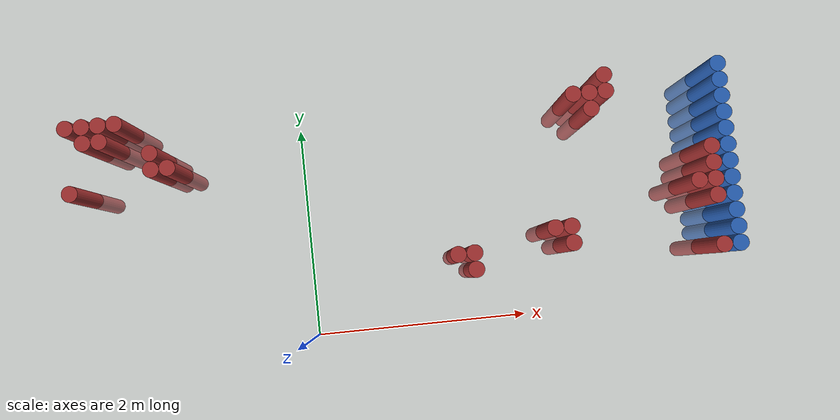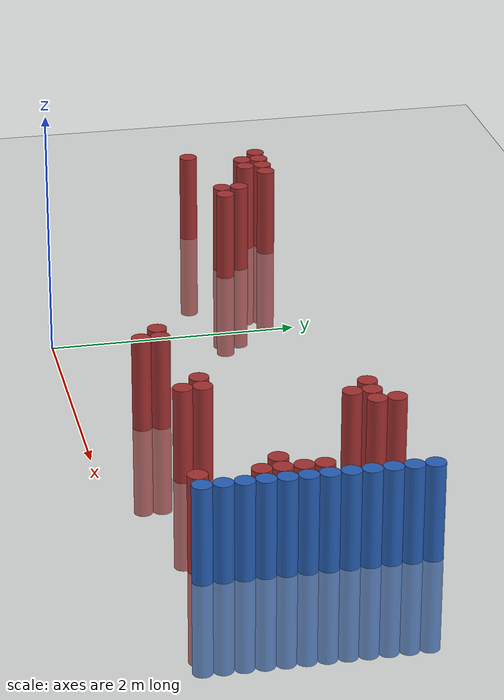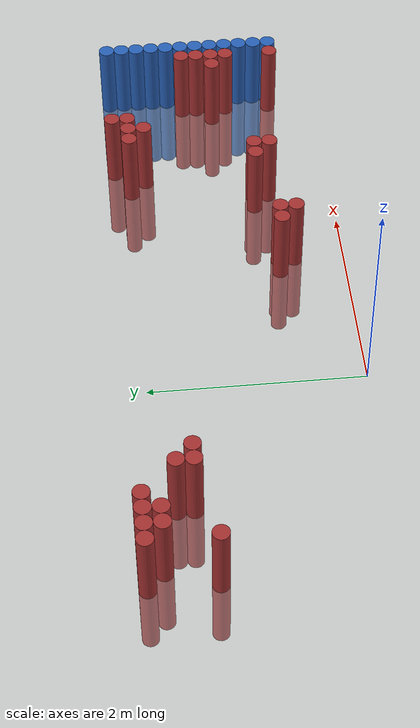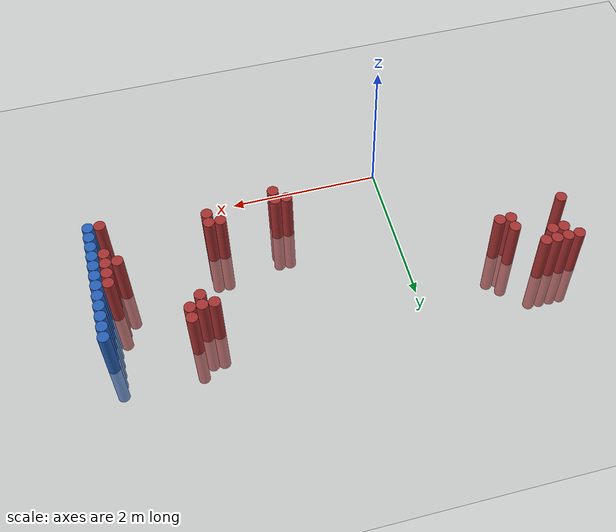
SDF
<sdf version="1.6">
 <world name="default">
  <model name="ground_plane">
   <static>1</static>
   <link name="link">
    <collision name="collision">
     <geometry><plane><normal>0 0 1</normal><size>100 100</size></plane></geometry>
     <surface><friction><ode><mu>100</mu><mu2>50</mu2></ode></friction></surface>
    </collision>
    <visual name="visual">
     <cast_shadows>0</cast_shadows>
     <geometry><plane><normal>0 0 1</normal><size>100 100</size></plane></geometry>
     <material>
      <script><uri>file://media/materials/scripts/gazebo.material</uri><name>Gazebo/Grey</name></script>
     </material>
    </visual>
   </link>
  </model>
  <model name="unit_cylinder_122">
   <static>1</static>
   <pose>3.925000 0.625000 0.000000 0.000000 0.000000 0.000000</pose>
   <link name="link">
    <inertial>
     <mass>1</mass>
     <inertia><ixx>0.145833</ixx><ixy>0</ixy><ixz>0</ixz><iyy>0.145833</iyy><iyz>0</iyz><izz>0.125</izz></inertia>
    </inertial>
    <collision name="collision">
     <geometry><cylinder><radius>0.075000</radius><length>1.5</length></cylinder></geometry>
    </collision>
    <visual name="visual">
     <geometry><cylinder><radius>0.075000</radius><length>1.5</length></cylinder></geometry>
     <material>
      <ambient>0.152000 0.379000 0.720000 1</ambient>
      <diffuse>0.152000 0.379000 0.720000 1</diffuse>
     </material>
     <material>
      <script><name>Gazebo/Grey</name><uri>file://media/materials/scripts/gazebo.material</uri></script>
     </material>
    </visual>
   </link>
  </model>
  <model name="unit_cylinder_124">
   <static>1</static>
   <pose>3.925000 0.775000 0.000000 0.000000 0.000000 0.000000</pose>
   <link name="link">
    <inertial>
     <mass>1</mass>
     <inertia><ixx>0.145833</ixx><ixy>0</ixy><ixz>0</ixz><iyy>0.145833</iyy><iyz>0</iyz><izz>0.125</izz></inertia>
    </inertial>
    <collision name="collision">
     <geometry><cylinder><radius>0.075000</radius><length>1.5</length></cylinder></geometry>
    </collision>
    <visual name="visual">
     <geometry><cylinder><radius>0.075000</radius><length>1.5</length></cylinder></geometry>
     <material>
      <ambient>0.152000 0.379000 0.720000 1</ambient>
      <diffuse>0.152000 0.379000 0.720000 1</diffuse>
     </material>
     <material>
      <script><name>Gazebo/Grey</name><uri>file://media/materials/scripts/gazebo.material</uri></script>
     </material>
    </visual>
   </link>
  </model>
  <model name="unit_cylinder_126">
   <static>1</static>
   <pose>3.925000 0.925000 0.000000 0.000000 0.000000 0.000000</pose>
   <link name="link">
    <inertial>
     <mass>1</mass>
     <inertia><ixx>0.145833</ixx><ixy>0</ixy><ixz>0</ixz><iyy>0.145833</iyy><iyz>0</iyz><izz>0.125</izz></inertia>
    </inertial>
    <collision name="collision">
     <geometry><cylinder><radius>0.075000</radius><length>1.5</length></cylinder></geometry>
    </collision>
    <visual name="visual">
     <geometry><cylinder><radius>0.075000</radius><length>1.5</length></cylinder></geometry>
     <material>
      <ambient>0.152000 0.379000 0.720000 1</ambient>
      <diffuse>0.152000 0.379000 0.720000 1</diffuse>
     </material>
     <material>
      <script><name>Gazebo/Grey</name><uri>file://media/materials/scripts/gazebo.material</uri></script>
     </material>
    </visual>
   </link>
  </model>
  <model name="unit_cylinder_128">
   <static>1</static>
   <pose>3.925000 1.075000 0.000000 0.000000 0.000000 0.000000</pose>
   <link name="link">
    <inertial>
     <mass>1</mass>
     <inertia><ixx>0.145833</ixx><ixy>0</ixy><ixz>0</ixz><iyy>0.145833</iyy><iyz>0</iyz><izz>0.125</izz></inertia>
    </inertial>
    <collision name="collision">
     <geometry><cylinder><radius>0.075000</radius><length>1.5</length></cylinder></geometry>
    </collision>
    <visual name="visual">
     <geometry><cylinder><radius>0.075000</radius><length>1.5</length></cylinder></geometry>
     <material>
      <ambient>0.152000 0.379000 0.720000 1</ambient>
      <diffuse>0.152000 0.379000 0.720000 1</diffuse>
     </material>
     <material>
      <script><name>Gazebo/Grey</name><uri>file://media/materials/scripts/gazebo.material</uri></script>
     </material>
    </visual>
   </link>
  </model>
  <model name="unit_cylinder_130">
   <static>1</static>
   <pose>3.925000 1.225000 0.000000 0.000000 0.000000 0.000000</pose>
   <link name="link">
    <inertial>
     <mass>1</mass>
     <inertia><ixx>0.145833</ixx><ixy>0</ixy><ixz>0</ixz><iyy>0.145833</iyy><iyz>0</iyz><izz>0.125</izz></inertia>
    </inertial>
    <collision name="collision">
     <geometry><cylinder><radius>0.075000</radius><length>1.5</length></cylinder></geometry>
    </collision>
    <visual name="visual">
     <geometry><cylinder><radius>0.075000</radius><length>1.5</length></cylinder></geometry>
     <material>
      <ambient>0.152000 0.379000 0.720000 1</ambient>
      <diffuse>0.152000 0.379000 0.720000 1</diffuse>
     </material>
     <material>
      <script><name>Gazebo/Grey</name><uri>file://media/materials/scripts/gazebo.material</uri></script>
     </material>
    </visual>
   </link>
  </model>
  <model name="unit_cylinder_132">
   <static>1</static>
   <pose>3.925000 1.375000 0.000000 0.000000 0.000000 0.000000</pose>
   <link name="link">
    <inertial>
     <mass>1</mass>
     <inertia><ixx>0.145833</ixx><ixy>0</ixy><ixz>0</ixz><iyy>0.145833</iyy><iyz>0</iyz><izz>0.125</izz></inertia>
    </inertial>
    <collision name="collision">
     <geometry><cylinder><radius>0.075000</radius><length>1.5</length></cylinder></geometry>
    </collision>
    <visual name="visual">
     <geometry><cylinder><radius>0.075000</radius><length>1.5</length></cylinder></geometry>
     <material>
      <ambient>0.152000 0.379000 0.720000 1</ambient>
      <diffuse>0.152000 0.379000 0.720000 1</diffuse>
     </material>
     <material>
      <script><name>Gazebo/Grey</name><uri>file://media/materials/scripts/gazebo.material</uri></script>
     </material>
    </visual>
   </link>
  </model>
  <model name="unit_cylinder_134">
   <static>1</static>
   <pose>3.925000 1.525000 0.000000 0.000000 0.000000 0.000000</pose>
   <link name="link">
    <inertial>
     <mass>1</mass>
     <inertia><ixx>0.145833</ixx><ixy>0</ixy><ixz>0</ixz><iyy>0.145833</iyy><iyz>0</iyz><izz>0.125</izz></inertia>
    </inertial>
    <collision name="collision">
     <geometry><cylinder><radius>0.075000</radius><length>1.5</length></cylinder></geometry>
    </collision>
    <visual name="visual">
     <geometry><cylinder><radius>0.075000</radius><length>1.5</length></cylinder></geometry>
     <material>
      <ambient>0.152000 0.379000 0.720000 1</ambient>
      <diffuse>0.152000 0.379000 0.720000 1</diffuse>
     </material>
     <material>
      <script><name>Gazebo/Grey</name><uri>file://media/materials/scripts/gazebo.material</uri></script>
     </material>
    </visual>
   </link>
  </model>
  <model name="unit_cylinder_136">
   <static>1</static>
   <pose>3.925000 1.675000 0.000000 0.000000 0.000000 0.000000</pose>
   <link name="link">
    <inertial>
     <mass>1</mass>
     <inertia><ixx>0.145833</ixx><ixy>0</ixy><ixz>0</ixz><iyy>0.145833</iyy><iyz>0</iyz><izz>0.125</izz></inertia>
    </inertial>
    <collision name="collision">
     <geometry><cylinder><radius>0.075000</radius><length>1.5</length></cylinder></geometry>
    </collision>
    <visual name="visual">
     <geometry><cylinder><radius>0.075000</radius><length>1.5</length></cylinder></geometry>
     <material>
      <ambient>0.152000 0.379000 0.720000 1</ambient>
      <diffuse>0.152000 0.379000 0.720000 1</diffuse>
     </material>
     <material>
      <script><name>Gazebo/Grey</name><uri>file://media/materials/scripts/gazebo.material</uri></script>
     </material>
    </visual>
   </link>
  </model>
  <model name="unit_cylinder_138">
   <static>1</static>
   <pose>3.925000 1.825000 0.000000 0.000000 0.000000 0.000000</pose>
   <link name="link">
    <inertial>
     <mass>1</mass>
     <inertia><ixx>0.145833</ixx><ixy>0</ixy><ixz>0</ixz><iyy>0.145833</iyy><iyz>0</iyz><izz>0.125</izz></inertia>
    </inertial>
    <collision name="collision">
     <geometry><cylinder><radius>0.075000</radius><length>1.5</length></cylinder></geometry>
    </collision>
    <visual name="visual">
     <geometry><cylinder><radius>0.075000</radius><length>1.5</length></cylinder></geometry>
     <material>
      <ambient>0.152000 0.379000 0.720000 1</ambient>
      <diffuse>0.152000 0.379000 0.720000 1</diffuse>
     </material>
     <material>
      <script><name>Gazebo/Grey</name><uri>file://media/materials/scripts/gazebo.material</uri></script>
     </material>
    </visual>
   </link>
  </model>
  <model name="unit_cylinder_140">
   <static>1</static>
   <pose>3.925000 1.975000 0.000000 0.000000 0.000000 0.000000</pose>
   <link name="link">
    <inertial>
     <mass>1</mass>
     <inertia><ixx>0.145833</ixx><ixy>0</ixy><ixz>0</ixz><iyy>0.145833</iyy><iyz>0</iyz><izz>0.125</izz></inertia>
    </inertial>
    <collision name="collision">
     <geometry><cylinder><radius>0.075000</radius><length>1.5</length></cylinder></geometry>
    </collision>
    <visual name="visual">
     <geometry><cylinder><radius>0.075000</radius><length>1.5</length></cylinder></geometry>
     <material>
      <ambient>0.152000 0.379000 0.720000 1</ambient>
      <diffuse>0.152000 0.379000 0.720000 1</diffuse>
     </material>
     <material>
      <script><name>Gazebo/Grey</name><uri>file://media/materials/scripts/gazebo.material</uri></script>
     </material>
    </visual>
   </link>
  </model>
  <model name="unit_cylinder_142">
   <static>1</static>
   <pose>3.925000 2.125000 0.000000 0.000000 0.000000 0.000000</pose>
   <link name="link">
    <inertial>
     <mass>1</mass>
     <inertia><ixx>0.145833</ixx><ixy>0</ixy><ixz>0</ixz><iyy>0.145833</iyy><iyz>0</iyz><izz>0.125</izz></inertia>
    </inertial>
    <collision name="collision">
     <geometry><cylinder><radius>0.075000</radius><length>1.5</length></cylinder></geometry>
    </collision>
    <visual name="visual">
     <geometry><cylinder><radius>0.075000</radius><length>1.5</length></cylinder></geometry>
     <material>
      <ambient>0.152000 0.379000 0.720000 1</ambient>
      <diffuse>0.152000 0.379000 0.720000 1</diffuse>
     </material>
     <material>
      <script><name>Gazebo/Grey</name><uri>file://media/materials/scripts/gazebo.material</uri></script>
     </material>
    </visual>
   </link>
  </model>
  <model name="unit_cylinder_293">
   <static>1</static>
   <pose>-2.075000 1.525000 0.000000 0.000000 0.000000 0.000000</pose>
   <link name="link">
    <inertial>
     <mass>1</mass>
     <inertia><ixx>0.145833</ixx><ixy>0</ixy><ixz>0</ixz><iyy>0.145833</iyy><iyz>0</iyz><izz>0.125</izz></inertia>
    </inertial>
    <collision name="collision">
     <geometry><cylinder><radius>0.075000</radius><length>1.5</length></cylinder></geometry>
    </collision>
    <visual name="visual">
     <geometry><cylinder><radius>0.075000</radius><length>1.5</length></cylinder></geometry>
     <material>
      <ambient>0.648000 0.192000 0.192000 1</ambient>
      <diffuse>0.648000 0.192000 0.192000 1</diffuse>
     </material>
     <material>
      <script><name>Gazebo/Grey</name><uri>file://media/materials/scripts/gazebo.material</uri></script>
     </material>
    </visual>
   </link>
  </model>
  <model name="unit_cylinder_294">
   <static>1</static>
   <pose>-2.075000 2.125000 0.000000 0.000000 0.000000 0.000000</pose>
   <link name="link">
    <inertial>
     <mass>1</mass>
     <inertia><ixx>0.145833</ixx><ixy>0</ixy><ixz>0</ixz><iyy>0.145833</iyy><iyz>0</iyz><izz>0.125</izz></inertia>
    </inertial>
    <collision name="collision">
     <geometry><cylinder><radius>0.075000</radius><length>1.5</length></cylinder></geometry>
    </collision>
    <visual name="visual">
     <geometry><cylinder><radius>0.075000</radius><length>1.5</length></cylinder></geometry>
     <material>
      <ambient>0.648000 0.192000 0.192000 1</ambient>
      <diffuse>0.648000 0.192000 0.192000 1</diffuse>
     </material>
     <material>
      <script><name>Gazebo/Grey</name><uri>file://media/materials/scripts/gazebo.material</uri></script>
     </material>
    </visual>
   </link>
  </model>
  <model name="unit_cylinder_296">
   <static>1</static>
   <pose>-1.925000 1.975000 0.000000 0.000000 0.000000 0.000000</pose>
   <link name="link">
    <inertial>
     <mass>1</mass>
     <inertia><ixx>0.145833</ixx><ixy>0</ixy><ixz>0</ixz><iyy>0.145833</iyy><iyz>0</iyz><izz>0.125</izz></inertia>
    </inertial>
    <collision name="collision">
     <geometry><cylinder><radius>0.075000</radius><length>1.5</length></cylinder></geometry>
    </collision>
    <visual name="visual">
     <geometry><cylinder><radius>0.075000</radius><length>1.5</length></cylinder></geometry>
     <material>
      <ambient>0.648000 0.192000 0.192000 1</ambient>
      <diffuse>0.648000 0.192000 0.192000 1</diffuse>
     </material>
     <material>
      <script><name>Gazebo/Grey</name><uri>file://media/materials/scripts/gazebo.material</uri></script>
     </material>
    </visual>
   </link>
  </model>
  <model name="unit_cylinder_297">
   <static>1</static>
   <pose>-1.925000 2.125000 0.000000 0.000000 0.000000 0.000000</pose>
   <link name="link">
    <inertial>
     <mass>1</mass>
     <inertia><ixx>0.145833</ixx><ixy>0</ixy><ixz>0</ixz><iyy>0.145833</iyy><iyz>0</iyz><izz>0.125</izz></inertia>
    </inertial>
    <collision name="collision">
     <geometry><cylinder><radius>0.075000</radius><length>1.5</length></cylinder></geometry>
    </collision>
    <visual name="visual">
     <geometry><cylinder><radius>0.075000</radius><length>1.5</length></cylinder></geometry>
     <material>
      <ambient>0.648000 0.192000 0.192000 1</ambient>
      <diffuse>0.648000 0.192000 0.192000 1</diffuse>
     </material>
     <material>
      <script><name>Gazebo/Grey</name><uri>file://media/materials/scripts/gazebo.material</uri></script>
     </material>
    </visual>
   </link>
  </model>
  <model name="unit_cylinder_301">
   <static>1</static>
   <pose>-1.775000 1.975000 0.000000 0.000000 0.000000 0.000000</pose>
   <link name="link">
    <inertial>
     <mass>1</mass>
     <inertia><ixx>0.145833</ixx><ixy>0</ixy><ixz>0</ixz><iyy>0.145833</iyy><iyz>0</iyz><izz>0.125</izz></inertia>
    </inertial>
    <collision name="collision">
     <geometry><cylinder><radius>0.075000</radius><length>1.5</length></cylinder></geometry>
    </collision>
    <visual name="visual">
     <geometry><cylinder><radius>0.075000</radius><length>1.5</length></cylinder></geometry>
     <material>
      <ambient>0.648000 0.192000 0.192000 1</ambient>
      <diffuse>0.648000 0.192000 0.192000 1</diffuse>
     </material>
     <material>
      <script><name>Gazebo/Grey</name><uri>file://media/materials/scripts/gazebo.material</uri></script>
     </material>
    </visual>
   </link>
  </model>
  <model name="unit_cylinder_302">
   <static>1</static>
   <pose>-1.775000 2.125000 0.000000 0.000000 0.000000 0.000000</pose>
   <link name="link">
    <inertial>
     <mass>1</mass>
     <inertia><ixx>0.145833</ixx><ixy>0</ixy><ixz>0</ixz><iyy>0.145833</iyy><iyz>0</iyz><izz>0.125</izz></inertia>
    </inertial>
    <collision name="collision">
     <geometry><cylinder><radius>0.075000</radius><length>1.5</length></cylinder></geometry>
    </collision>
    <visual name="visual">
     <geometry><cylinder><radius>0.075000</radius><length>1.5</length></cylinder></geometry>
     <material>
      <ambient>0.648000 0.192000 0.192000 1</ambient>
      <diffuse>0.648000 0.192000 0.192000 1</diffuse>
     </material>
     <material>
      <script><name>Gazebo/Grey</name><uri>file://media/materials/scripts/gazebo.material</uri></script>
     </material>
    </visual>
   </link>
  </model>
  <model name="unit_cylinder_306">
   <static>1</static>
   <pose>-1.625000 2.125000 0.000000 0.000000 0.000000 0.000000</pose>
   <link name="link">
    <inertial>
     <mass>1</mass>
     <inertia><ixx>0.145833</ixx><ixy>0</ixy><ixz>0</ixz><iyy>0.145833</iyy><iyz>0</iyz><izz>0.125</izz></inertia>
    </inertial>
    <collision name="collision">
     <geometry><cylinder><radius>0.075000</radius><length>1.5</length></cylinder></geometry>
    </collision>
    <visual name="visual">
     <geometry><cylinder><radius>0.075000</radius><length>1.5</length></cylinder></geometry>
     <material>
      <ambient>0.648000 0.192000 0.192000 1</ambient>
      <diffuse>0.648000 0.192000 0.192000 1</diffuse>
     </material>
     <material>
      <script><name>Gazebo/Grey</name><uri>file://media/materials/scripts/gazebo.material</uri></script>
     </material>
    </visual>
   </link>
  </model>
  <model name="unit_cylinder_308">
   <static>1</static>
   <pose>-1.325000 1.675000 0.000000 0.000000 0.000000 0.000000</pose>
   <link name="link">
    <inertial>
     <mass>1</mass>
     <inertia><ixx>0.145833</ixx><ixy>0</ixy><ixz>0</ixz><iyy>0.145833</iyy><iyz>0</iyz><izz>0.125</izz></inertia>
    </inertial>
    <collision name="collision">
     <geometry><cylinder><radius>0.075000</radius><length>1.5</length></cylinder></geometry>
    </collision>
    <visual name="visual">
     <geometry><cylinder><radius>0.075000</radius><length>1.5</length></cylinder></geometry>
     <material>
      <ambient>0.648000 0.192000 0.192000 1</ambient>
      <diffuse>0.648000 0.192000 0.192000 1</diffuse>
     </material>
     <material>
      <script><name>Gazebo/Grey</name><uri>file://media/materials/scripts/gazebo.material</uri></script>
     </material>
    </visual>
   </link>
  </model>
  <model name="unit_cylinder_309">
   <static>1</static>
   <pose>-1.325000 1.825000 0.000000 0.000000 0.000000 0.000000</pose>
   <link name="link">
    <inertial>
     <mass>1</mass>
     <inertia><ixx>0.145833</ixx><ixy>0</ixy><ixz>0</ixz><iyy>0.145833</iyy><iyz>0</iyz><izz>0.125</izz></inertia>
    </inertial>
    <collision name="collision">
     <geometry><cylinder><radius>0.075000</radius><length>1.5</length></cylinder></geometry>
    </collision>
    <visual name="visual">
     <geometry><cylinder><radius>0.075000</radius><length>1.5</length></cylinder></geometry>
     <material>
      <ambient>0.648000 0.192000 0.192000 1</ambient>
      <diffuse>0.648000 0.192000 0.192000 1</diffuse>
     </material>
     <material>
      <script><name>Gazebo/Grey</name><uri>file://media/materials/scripts/gazebo.material</uri></script>
     </material>
    </visual>
   </link>
  </model>
  <model name="unit_cylinder_312">
   <static>1</static>
   <pose>-1.175000 1.675000 0.000000 0.000000 0.000000 0.000000</pose>
   <link name="link">
    <inertial>
     <mass>1</mass>
     <inertia><ixx>0.145833</ixx><ixy>0</ixy><ixz>0</ixz><iyy>0.145833</iyy><iyz>0</iyz><izz>0.125</izz></inertia>
    </inertial>
    <collision name="collision">
     <geometry><cylinder><radius>0.075000</radius><length>1.5</length></cylinder></geometry>
    </collision>
    <visual name="visual">
     <geometry><cylinder><radius>0.075000</radius><length>1.5</length></cylinder></geometry>
     <material>
      <ambient>0.648000 0.192000 0.192000 1</ambient>
      <diffuse>0.648000 0.192000 0.192000 1</diffuse>
     </material>
     <material>
      <script><name>Gazebo/Grey</name><uri>file://media/materials/scripts/gazebo.material</uri></script>
     </material>
    </visual>
   </link>
  </model>
  <model name="unit_cylinder_345">
   <static>1</static>
   <pose>1.375000 0.625000 0.000000 0.000000 0.000000 0.000000</pose>
   <link name="link">
    <inertial>
     <mass>1</mass>
     <inertia><ixx>0.145833</ixx><ixy>0</ixy><ixz>0</ixz><iyy>0.145833</iyy><iyz>0</iyz><izz>0.125</izz></inertia>
    </inertial>
    <collision name="collision">
     <geometry><cylinder><radius>0.075000</radius><length>1.5</length></cylinder></geometry>
    </collision>
    <visual name="visual">
     <geometry><cylinder><radius>0.075000</radius><length>1.5</length></cylinder></geometry>
     <material>
      <ambient>0.648000 0.192000 0.192000 1</ambient>
      <diffuse>0.648000 0.192000 0.192000 1</diffuse>
     </material>
     <material>
      <script><name>Gazebo/Grey</name><uri>file://media/materials/scripts/gazebo.material</uri></script>
     </material>
    </visual>
   </link>
  </model>
  <model name="unit_cylinder_348">
   <static>1</static>
   <pose>1.525000 0.475000 0.000000 0.000000 0.000000 0.000000</pose>
   <link name="link">
    <inertial>
     <mass>1</mass>
     <inertia><ixx>0.145833</ixx><ixy>0</ixy><ixz>0</ixz><iyy>0.145833</iyy><iyz>0</iyz><izz>0.125</izz></inertia>
    </inertial>
    <collision name="collision">
     <geometry><cylinder><radius>0.075000</radius><length>1.5</length></cylinder></geometry>
    </collision>
    <visual name="visual">
     <geometry><cylinder><radius>0.075000</radius><length>1.5</length></cylinder></geometry>
     <material>
      <ambient>0.648000 0.192000 0.192000 1</ambient>
      <diffuse>0.648000 0.192000 0.192000 1</diffuse>
     </material>
     <material>
      <script><name>Gazebo/Grey</name><uri>file://media/materials/scripts/gazebo.material</uri></script>
     </material>
    </visual>
   </link>
  </model>
  <model name="unit_cylinder_349">
   <static>1</static>
   <pose>1.525000 0.625000 0.000000 0.000000 0.000000 0.000000</pose>
   <link name="link">
    <inertial>
     <mass>1</mass>
     <inertia><ixx>0.145833</ixx><ixy>0</ixy><ixz>0</ixz><iyy>0.145833</iyy><iyz>0</iyz><izz>0.125</izz></inertia>
    </inertial>
    <collision name="collision">
     <geometry><cylinder><radius>0.075000</radius><length>1.5</length></cylinder></geometry>
    </collision>
    <visual name="visual">
     <geometry><cylinder><radius>0.075000</radius><length>1.5</length></cylinder></geometry>
     <material>
      <ambient>0.648000 0.192000 0.192000 1</ambient>
      <diffuse>0.648000 0.192000 0.192000 1</diffuse>
     </material>
     <material>
      <script><name>Gazebo/Grey</name><uri>file://media/materials/scripts/gazebo.material</uri></script>
     </material>
    </visual>
   </link>
  </model>
  <model name="unit_cylinder_356">
   <static>1</static>
   <pose>2.275000 0.775000 0.000000 0.000000 0.000000 0.000000</pose>
   <link name="link">
    <inertial>
     <mass>1</mass>
     <inertia><ixx>0.145833</ixx><ixy>0</ixy><ixz>0</ixz><iyy>0.145833</iyy><iyz>0</iyz><izz>0.125</izz></inertia>
    </inertial>
    <collision name="collision">
     <geometry><cylinder><radius>0.075000</radius><length>1.5</length></cylinder></geometry>
    </collision>
    <visual name="visual">
     <geometry><cylinder><radius>0.075000</radius><length>1.5</length></cylinder></geometry>
     <material>
      <ambient>0.648000 0.192000 0.192000 1</ambient>
      <diffuse>0.648000 0.192000 0.192000 1</diffuse>
     </material>
     <material>
      <script><name>Gazebo/Grey</name><uri>file://media/materials/scripts/gazebo.material</uri></script>
     </material>
    </visual>
   </link>
  </model>
  <model name="unit_cylinder_359">
   <static>1</static>
   <pose>2.425000 0.625000 0.000000 0.000000 0.000000 0.000000</pose>
   <link name="link">
    <inertial>
     <mass>1</mass>
     <inertia><ixx>0.145833</ixx><ixy>0</ixy><ixz>0</ixz><iyy>0.145833</iyy><iyz>0</iyz><izz>0.125</izz></inertia>
    </inertial>
    <collision name="collision">
     <geometry><cylinder><radius>0.075000</radius><length>1.5</length></cylinder></geometry>
    </collision>
    <visual name="visual">
     <geometry><cylinder><radius>0.075000</radius><length>1.5</length></cylinder></geometry>
     <material>
      <ambient>0.648000 0.192000 0.192000 1</ambient>
      <diffuse>0.648000 0.192000 0.192000 1</diffuse>
     </material>
     <material>
      <script><name>Gazebo/Grey</name><uri>file://media/materials/scripts/gazebo.material</uri></script>
     </material>
    </visual>
   </link>
  </model>
  <model name="unit_cylinder_360">
   <static>1</static>
   <pose>2.425000 0.775000 0.000000 0.000000 0.000000 0.000000</pose>
   <link name="link">
    <inertial>
     <mass>1</mass>
     <inertia><ixx>0.145833</ixx><ixy>0</ixy><ixz>0</ixz><iyy>0.145833</iyy><iyz>0</iyz><izz>0.125</izz></inertia>
    </inertial>
    <collision name="collision">
     <geometry><cylinder><radius>0.075000</radius><length>1.5</length></cylinder></geometry>
    </collision>
    <visual name="visual">
     <geometry><cylinder><radius>0.075000</radius><length>1.5</length></cylinder></geometry>
     <material>
      <ambient>0.648000 0.192000 0.192000 1</ambient>
      <diffuse>0.648000 0.192000 0.192000 1</diffuse>
     </material>
     <material>
      <script><name>Gazebo/Grey</name><uri>file://media/materials/scripts/gazebo.material</uri></script>
     </material>
    </visual>
   </link>
  </model>
  <model name="unit_cylinder_362">
   <static>1</static>
   <pose>2.575000 1.975000 0.000000 0.000000 0.000000 0.000000</pose>
   <link name="link">
    <inertial>
     <mass>1</mass>
     <inertia><ixx>0.145833</ixx><ixy>0</ixy><ixz>0</ixz><iyy>0.145833</iyy><iyz>0</iyz><izz>0.125</izz></inertia>
    </inertial>
    <collision name="collision">
     <geometry><cylinder><radius>0.075000</radius><length>1.5</length></cylinder></geometry>
    </collision>
    <visual name="visual">
     <geometry><cylinder><radius>0.075000</radius><length>1.5</length></cylinder></geometry>
     <material>
      <ambient>0.648000 0.192000 0.192000 1</ambient>
      <diffuse>0.648000 0.192000 0.192000 1</diffuse>
     </material>
     <material>
      <script><name>Gazebo/Grey</name><uri>file://media/materials/scripts/gazebo.material</uri></script>
     </material>
    </visual>
   </link>
  </model>
  <model name="unit_cylinder_363">
   <static>1</static>
   <pose>2.725000 1.825000 0.000000 0.000000 0.000000 0.000000</pose>
   <link name="link">
    <inertial>
     <mass>1</mass>
     <inertia><ixx>0.145833</ixx><ixy>0</ixy><ixz>0</ixz><iyy>0.145833</iyy><iyz>0</iyz><izz>0.125</izz></inertia>
    </inertial>
    <collision name="collision">
     <geometry><cylinder><radius>0.075000</radius><length>1.5</length></cylinder></geometry>
    </collision>
    <visual name="visual">
     <geometry><cylinder><radius>0.075000</radius><length>1.5</length></cylinder></geometry>
     <material>
      <ambient>0.648000 0.192000 0.192000 1</ambient>
      <diffuse>0.648000 0.192000 0.192000 1</diffuse>
     </material>
     <material>
      <script><name>Gazebo/Grey</name><uri>file://media/materials/scripts/gazebo.material</uri></script>
     </material>
    </visual>
   </link>
  </model>
  <model name="unit_cylinder_364">
   <static>1</static>
   <pose>2.725000 1.975000 0.000000 0.000000 0.000000 0.000000</pose>
   <link name="link">
    <inertial>
     <mass>1</mass>
     <inertia><ixx>0.145833</ixx><ixy>0</ixy><ixz>0</ixz><iyy>0.145833</iyy><iyz>0</iyz><izz>0.125</izz></inertia>
    </inertial>
    <collision name="collision">
     <geometry><cylinder><radius>0.075000</radius><length>1.5</length></cylinder></geometry>
    </collision>
    <visual name="visual">
     <geometry><cylinder><radius>0.075000</radius><length>1.5</length></cylinder></geometry>
     <material>
      <ambient>0.648000 0.192000 0.192000 1</ambient>
      <diffuse>0.648000 0.192000 0.192000 1</diffuse>
     </material>
     <material>
      <script><name>Gazebo/Grey</name><uri>file://media/materials/scripts/gazebo.material</uri></script>
     </material>
    </visual>
   </link>
  </model>
  <model name="unit_cylinder_367">
   <static>1</static>
   <pose>2.875000 1.975000 0.000000 0.000000 0.000000 0.000000</pose>
   <link name="link">
    <inertial>
     <mass>1</mass>
     <inertia><ixx>0.145833</ixx><ixy>0</ixy><ixz>0</ixz><iyy>0.145833</iyy><iyz>0</iyz><izz>0.125</izz></inertia>
    </inertial>
    <collision name="collision">
     <geometry><cylinder><radius>0.075000</radius><length>1.5</length></cylinder></geometry>
    </collision>
    <visual name="visual">
     <geometry><cylinder><radius>0.075000</radius><length>1.5</length></cylinder></geometry>
     <material>
      <ambient>0.648000 0.192000 0.192000 1</ambient>
      <diffuse>0.648000 0.192000 0.192000 1</diffuse>
     </material>
     <material>
      <script><name>Gazebo/Grey</name><uri>file://media/materials/scripts/gazebo.material</uri></script>
     </material>
    </visual>
   </link>
  </model>
  <model name="unit_cylinder_368">
   <static>1</static>
   <pose>2.875000 2.125000 0.000000 0.000000 0.000000 0.000000</pose>
   <link name="link">
    <inertial>
     <mass>1</mass>
     <inertia><ixx>0.145833</ixx><ixy>0</ixy><ixz>0</ixz><iyy>0.145833</iyy><iyz>0</iyz><izz>0.125</izz></inertia>
    </inertial>
    <collision name="collision">
     <geometry><cylinder><radius>0.075000</radius><length>1.5</length></cylinder></geometry>
    </collision>
    <visual name="visual">
     <geometry><cylinder><radius>0.075000</radius><length>1.5</length></cylinder></geometry>
     <material>
      <ambient>0.648000 0.192000 0.192000 1</ambient>
      <diffuse>0.648000 0.192000 0.192000 1</diffuse>
     </material>
     <material>
      <script><name>Gazebo/Grey</name><uri>file://media/materials/scripts/gazebo.material</uri></script>
     </material>
    </visual>
   </link>
  </model>
  <model name="unit_cylinder_374">
   <static>1</static>
   <pose>3.625000 1.075000 0.000000 0.000000 0.000000 0.000000</pose>
   <link name="link">
    <inertial>
     <mass>1</mass>
     <inertia><ixx>0.145833</ixx><ixy>0</ixy><ixz>0</ixz><iyy>0.145833</iyy><iyz>0</iyz><izz>0.125</izz></inertia>
    </inertial>
    <collision name="collision">
     <geometry><cylinder><radius>0.075000</radius><length>1.5</length></cylinder></geometry>
    </collision>
    <visual name="visual">
     <geometry><cylinder><radius>0.075000</radius><length>1.5</length></cylinder></geometry>
     <material>
      <ambient>0.648000 0.192000 0.192000 1</ambient>
      <diffuse>0.648000 0.192000 0.192000 1</diffuse>
     </material>
     <material>
      <script><name>Gazebo/Grey</name><uri>file://media/materials/scripts/gazebo.material</uri></script>
     </material>
    </visual>
   </link>
  </model>
  <model name="unit_cylinder_381">
   <static>1</static>
   <pose>3.775000 0.475000 0.000000 0.000000 0.000000 0.000000</pose>
   <link name="link">
    <inertial>
     <mass>1</mass>
     <inertia><ixx>0.145833</ixx><ixy>0</ixy><ixz>0</ixz><iyy>0.145833</iyy><iyz>0</iyz><izz>0.125</izz></inertia>
    </inertial>
    <collision name="collision">
     <geometry><cylinder><radius>0.075000</radius><length>1.5</length></cylinder></geometry>
    </collision>
    <visual name="visual">
     <geometry><cylinder><radius>0.075000</radius><length>1.5</length></cylinder></geometry>
     <material>
      <ambient>0.648000 0.192000 0.192000 1</ambient>
      <diffuse>0.648000 0.192000 0.192000 1</diffuse>
     </material>
     <material>
      <script><name>Gazebo/Grey</name><uri>file://media/materials/scripts/gazebo.material</uri></script>
     </material>
    </visual>
   </link>
  </model>
  <model name="unit_cylinder_382">
   <static>1</static>
   <pose>3.775000 0.925000 0.000000 0.000000 0.000000 0.000000</pose>
   <link name="link">
    <inertial>
     <mass>1</mass>
     <inertia><ixx>0.145833</ixx><ixy>0</ixy><ixz>0</ixz><iyy>0.145833</iyy><iyz>0</iyz><izz>0.125</izz></inertia>
    </inertial>
    <collision name="collision">
     <geometry><cylinder><radius>0.075000</radius><length>1.5</length></cylinder></geometry>
    </collision>
    <visual name="visual">
     <geometry><cylinder><radius>0.075000</radius><length>1.5</length></cylinder></geometry>
     <material>
      <ambient>0.648000 0.192000 0.192000 1</ambient>
      <diffuse>0.648000 0.192000 0.192000 1</diffuse>
     </material>
     <material>
      <script><name>Gazebo/Grey</name><uri>file://media/materials/scripts/gazebo.material</uri></script>
     </material>
    </visual>
   </link>
  </model>
  <model name="unit_cylinder_383">
   <static>1</static>
   <pose>3.775000 1.075000 0.000000 0.000000 0.000000 0.000000</pose>
   <link name="link">
    <inertial>
     <mass>1</mass>
     <inertia><ixx>0.145833</ixx><ixy>0</ixy><ixz>0</ixz><iyy>0.145833</iyy><iyz>0</iyz><izz>0.125</izz></inertia>
    </inertial>
    <collision name="collision">
     <geometry><cylinder><radius>0.075000</radius><length>1.5</length></cylinder></geometry>
    </collision>
    <visual name="visual">
     <geometry><cylinder><radius>0.075000</radius><length>1.5</length></cylinder></geometry>
     <material>
      <ambient>0.648000 0.192000 0.192000 1</ambient>
      <diffuse>0.648000 0.192000 0.192000 1</diffuse>
     </material>
     <material>
      <script><name>Gazebo/Grey</name><uri>file://media/materials/scripts/gazebo.material</uri></script>
     </material>
    </visual>
   </link>
  </model>
  <model name="unit_cylinder_384">
   <static>1</static>
   <pose>3.775000 1.225000 0.000000 0.000000 0.000000 0.000000</pose>
   <link name="link">
    <inertial>
     <mass>1</mass>
     <inertia><ixx>0.145833</ixx><ixy>0</ixy><ixz>0</ixz><iyy>0.145833</iyy><iyz>0</iyz><izz>0.125</izz></inertia>
    </inertial>
    <collision name="collision">
     <geometry><cylinder><radius>0.075000</radius><length>1.5</length></cylinder></geometry>
    </collision>
    <visual name="visual">
     <geometry><cylinder><radius>0.075000</radius><length>1.5</length></cylinder></geometry>
     <material>
      <ambient>0.648000 0.192000 0.192000 1</ambient>
      <diffuse>0.648000 0.192000 0.192000 1</diffuse>
     </material>
     <material>
      <script><name>Gazebo/Grey</name><uri>file://media/materials/scripts/gazebo.material</uri></script>
     </material>
    </visual>
   </link>
  </model>
  <model name="unit_cylinder_385">
   <static>1</static>
   <pose>3.775000 1.375000 0.000000 0.000000 0.000000 0.000000</pose>
   <link name="link">
    <inertial>
     <mass>1</mass>
     <inertia><ixx>0.145833</ixx><ixy>0</ixy><ixz>0</ixz><iyy>0.145833</iyy><iyz>0</iyz><izz>0.125</izz></inertia>
    </inertial>
    <collision name="collision">
     <geometry><cylinder><radius>0.075000</radius><length>1.5</length></cylinder></geometry>
    </collision>
    <visual name="visual">
     <geometry><cylinder><radius>0.075000</radius><length>1.5</length></cylinder></geometry>
     <material>
      <ambient>0.648000 0.192000 0.192000 1</ambient>
      <diffuse>0.648000 0.192000 0.192000 1</diffuse>
     </material>
     <material>
      <script><name>Gazebo/Grey</name><uri>file://media/materials/scripts/gazebo.material</uri></script>
     </material>
    </visual>
   </link>
  </model>
  <model name="unit_cylinder_405">
   <static>1</static>
   <pose>3.925000 0.475000 0.000000 0.000000 0.000000 0.000000</pose>
   <link name="link">
    <inertial>
     <mass>1</mass>
     <inertia><ixx>0.145833</ixx><ixy>0</ixy><ixz>0</ixz><iyy>0.145833</iyy><iyz>0</iyz><izz>0.125</izz></inertia>
    </inertial>
    <collision name="collision">
     <geometry><cylinder><radius>0.075000</radius><length>1.5</length></cylinder></geometry>
    </collision>
    <visual name="visual">
     <geometry><cylinder><radius>0.075000</radius><length>1.5</length></cylinder></geometry>
     <material>
      <ambient>0.152000 0.379000 0.720000 1</ambient>
      <diffuse>0.152000 0.379000 0.720000 1</diffuse>
     </material>
     <material>
      <script><name>Gazebo/Grey</name><uri>file://media/materials/scripts/gazebo.material</uri></script>
     </material>
    </visual>
   </link>
  </model>
  <model name="unit_cylinder_406">
   <static>1</static>
   <pose>3.925000 0.625000 0.000000 0.000000 0.000000 0.000000</pose>
   <link name="link">
    <inertial>
     <mass>1</mass>
     <inertia><ixx>0.145833</ixx><ixy>0</ixy><ixz>0</ixz><iyy>0.145833</iyy><iyz>0</iyz><izz>0.125</izz></inertia>
    </inertial>
    <collision name="collision">
     <geometry><cylinder><radius>0.075000</radius><length>1.5</length></cylinder></geometry>
    </collision>
    <visual name="visual">
     <geometry><cylinder><radius>0.075000</radius><length>1.5</length></cylinder></geometry>
     <material>
      <ambient>0.152000 0.379000 0.720000 1</ambient>
      <diffuse>0.152000 0.379000 0.720000 1</diffuse>
     </material>
     <material>
      <script><name>Gazebo/Grey</name><uri>file://media/materials/scripts/gazebo.material</uri></script>
     </material>
    </visual>
   </link>
  </model>
  <model name="unit_cylinder_407">
   <static>1</static>
   <pose>3.925000 0.775000 0.000000 0.000000 0.000000 0.000000</pose>
   <link name="link">
    <inertial>
     <mass>1</mass>
     <inertia><ixx>0.145833</ixx><ixy>0</ixy><ixz>0</ixz><iyy>0.145833</iyy><iyz>0</iyz><izz>0.125</izz></inertia>
    </inertial>
    <collision name="collision">
     <geometry><cylinder><radius>0.075000</radius><length>1.5</length></cylinder></geometry>
    </collision>
    <visual name="visual">
     <geometry><cylinder><radius>0.075000</radius><length>1.5</length></cylinder></geometry>
     <material>
      <ambient>0.152000 0.379000 0.720000 1</ambient>
      <diffuse>0.152000 0.379000 0.720000 1</diffuse>
     </material>
     <material>
      <script><name>Gazebo/Grey</name><uri>file://media/materials/scripts/gazebo.material</uri></script>
     </material>
    </visual>
   </link>
  </model>
  <model name="unit_cylinder_408">
   <static>1</static>
   <pose>3.925000 0.925000 0.000000 0.000000 0.000000 0.000000</pose>
   <link name="link">
    <inertial>
     <mass>1</mass>
     <inertia><ixx>0.145833</ixx><ixy>0</ixy><ixz>0</ixz><iyy>0.145833</iyy><iyz>0</iyz><izz>0.125</izz></inertia>
    </inertial>
    <collision name="collision">
     <geometry><cylinder><radius>0.075000</radius><length>1.5</length></cylinder></geometry>
    </collision>
    <visual name="visual">
     <geometry><cylinder><radius>0.075000</radius><length>1.5</length></cylinder></geometry>
     <material>
      <ambient>0.152000 0.379000 0.720000 1</ambient>
      <diffuse>0.152000 0.379000 0.720000 1</diffuse>
     </material>
     <material>
      <script><name>Gazebo/Grey</name><uri>file://media/materials/scripts/gazebo.material</uri></script>
     </material>
    </visual>
   </link>
  </model>
  <model name="unit_cylinder_409">
   <static>1</static>
   <pose>3.925000 1.075000 0.000000 0.000000 0.000000 0.000000</pose>
   <link name="link">
    <inertial>
     <mass>1</mass>
     <inertia><ixx>0.145833</ixx><ixy>0</ixy><ixz>0</ixz><iyy>0.145833</iyy><iyz>0</iyz><izz>0.125</izz></inertia>
    </inertial>
    <collision name="collision">
     <geometry><cylinder><radius>0.075000</radius><length>1.5</length></cylinder></geometry>
    </collision>
    <visual name="visual">
     <geometry><cylinder><radius>0.075000</radius><length>1.5</length></cylinder></geometry>
     <material>
      <ambient>0.152000 0.379000 0.720000 1</ambient>
      <diffuse>0.152000 0.379000 0.720000 1</diffuse>
     </material>
     <material>
      <script><name>Gazebo/Grey</name><uri>file://media/materials/scripts/gazebo.material</uri></script>
     </material>
    </visual>
   </link>
  </model>
  <model name="unit_cylinder_410">
   <static>1</static>
   <pose>3.925000 1.225000 0.000000 0.000000 0.000000 0.000000</pose>
   <link name="link">
    <inertial>
     <mass>1</mass>
     <inertia><ixx>0.145833</ixx><ixy>0</ixy><ixz>0</ixz><iyy>0.145833</iyy><iyz>0</iyz><izz>0.125</izz></inertia>
    </inertial>
    <collision name="collision">
     <geometry><cylinder><radius>0.075000</radius><length>1.5</length></cylinder></geometry>
    </collision>
    <visual name="visual">
     <geometry><cylinder><radius>0.075000</radius><length>1.5</length></cylinder></geometry>
     <material>
      <ambient>0.152000 0.379000 0.720000 1</ambient>
      <diffuse>0.152000 0.379000 0.720000 1</diffuse>
     </material>
     <material>
      <script><name>Gazebo/Grey</name><uri>file://media/materials/scripts/gazebo.material</uri></script>
     </material>
    </visual>
   </link>
  </model>
  <model name="unit_cylinder_411">
   <static>1</static>
   <pose>3.925000 1.375000 0.000000 0.000000 0.000000 0.000000</pose>
   <link name="link">
    <inertial>
     <mass>1</mass>
     <inertia><ixx>0.145833</ixx><ixy>0</ixy><ixz>0</ixz><iyy>0.145833</iyy><iyz>0</iyz><izz>0.125</izz></inertia>
    </inertial>
    <collision name="collision">
     <geometry><cylinder><radius>0.075000</radius><length>1.5</length></cylinder></geometry>
    </collision>
    <visual name="visual">
     <geometry><cylinder><radius>0.075000</radius><length>1.5</length></cylinder></geometry>
     <material>
      <ambient>0.152000 0.379000 0.720000 1</ambient>
      <diffuse>0.152000 0.379000 0.720000 1</diffuse>
     </material>
     <material>
      <script><name>Gazebo/Grey</name><uri>file://media/materials/scripts/gazebo.material</uri></script>
     </material>
    </visual>
   </link>
  </model>
  <model name="unit_cylinder_412">
   <static>1</static>
   <pose>3.925000 1.525000 0.000000 0.000000 0.000000 0.000000</pose>
   <link name="link">
    <inertial>
     <mass>1</mass>
     <inertia><ixx>0.145833</ixx><ixy>0</ixy><ixz>0</ixz><iyy>0.145833</iyy><iyz>0</iyz><izz>0.125</izz></inertia>
    </inertial>
    <collision name="collision">
     <geometry><cylinder><radius>0.075000</radius><length>1.5</length></cylinder></geometry>
    </collision>
    <visual name="visual">
     <geometry><cylinder><radius>0.075000</radius><length>1.5</length></cylinder></geometry>
     <material>
      <ambient>0.152000 0.379000 0.720000 1</ambient>
      <diffuse>0.152000 0.379000 0.720000 1</diffuse>
     </material>
     <material>
      <script><name>Gazebo/Grey</name><uri>file://media/materials/scripts/gazebo.material</uri></script>
     </material>
    </visual>
   </link>
  </model>
  <model name="unit_cylinder_413">
   <static>1</static>
   <pose>3.925000 1.675000 0.000000 0.000000 0.000000 0.000000</pose>
   <link name="link">
    <inertial>
     <mass>1</mass>
     <inertia><ixx>0.145833</ixx><ixy>0</ixy><ixz>0</ixz><iyy>0.145833</iyy><iyz>0</iyz><izz>0.125</izz></inertia>
    </inertial>
    <collision name="collision">
     <geometry><cylinder><radius>0.075000</radius><length>1.5</length></cylinder></geometry>
    </collision>
    <visual name="visual">
     <geometry><cylinder><radius>0.075000</radius><length>1.5</length></cylinder></geometry>
     <material>
      <ambient>0.152000 0.379000 0.720000 1</ambient>
      <diffuse>0.152000 0.379000 0.720000 1</diffuse>
     </material>
     <material>
      <script><name>Gazebo/Grey</name><uri>file://media/materials/scripts/gazebo.material</uri></script>
     </material>
    </visual>
   </link>
  </model>
  <model name="unit_cylinder_414">
   <static>1</static>
   <pose>3.925000 1.825000 0.000000 0.000000 0.000000 0.000000</pose>
   <link name="link">
    <inertial>
     <mass>1</mass>
     <inertia><ixx>0.145833</ixx><ixy>0</ixy><ixz>0</ixz><iyy>0.145833</iyy><iyz>0</iyz><izz>0.125</izz></inertia>
    </inertial>
    <collision name="collision">
     <geometry><cylinder><radius>0.075000</radius><length>1.5</length></cylinder></geometry>
    </collision>
    <visual name="visual">
     <geometry><cylinder><radius>0.075000</radius><length>1.5</length></cylinder></geometry>
     <material>
      <ambient>0.152000 0.379000 0.720000 1</ambient>
      <diffuse>0.152000 0.379000 0.720000 1</diffuse>
     </material>
     <material>
      <script><name>Gazebo/Grey</name><uri>file://media/materials/scripts/gazebo.material</uri></script>
     </material>
    </visual>
   </link>
  </model>
  <model name="unit_cylinder_415">
   <static>1</static>
   <pose>3.925000 1.975000 0.000000 0.000000 0.000000 0.000000</pose>
   <link name="link">
    <inertial>
     <mass>1</mass>
     <inertia><ixx>0.145833</ixx><ixy>0</ixy><ixz>0</ixz><iyy>0.145833</iyy><iyz>0</iyz><izz>0.125</izz></inertia>
    </inertial>
    <collision name="collision">
     <geometry><cylinder><radius>0.075000</radius><length>1.5</length></cylinder></geometry>
    </collision>
    <visual name="visual">
     <geometry><cylinder><radius>0.075000</radius><length>1.5</length></cylinder></geometry>
     <material>
      <ambient>0.152000 0.379000 0.720000 1</ambient>
      <diffuse>0.152000 0.379000 0.720000 1</diffuse>
     </material>
     <material>
      <script><name>Gazebo/Grey</name><uri>file://media/materials/scripts/gazebo.material</uri></script>
     </material>
    </visual>
   </link>
  </model>
 </world>
</sdf>
